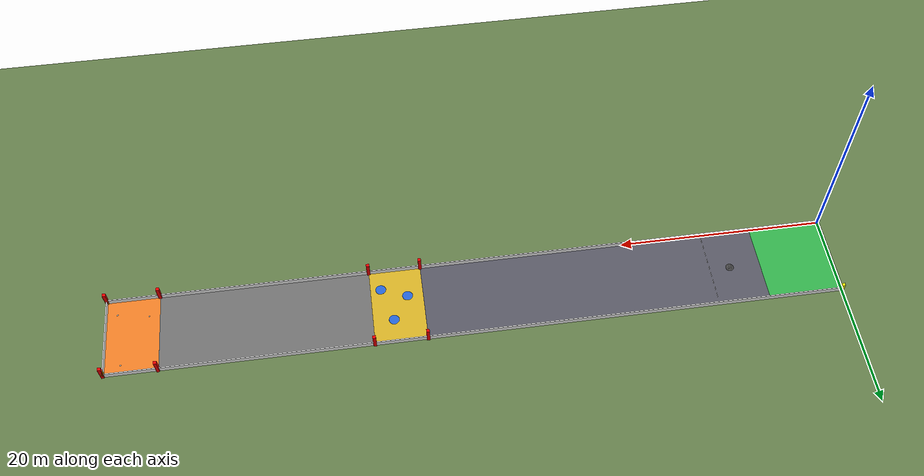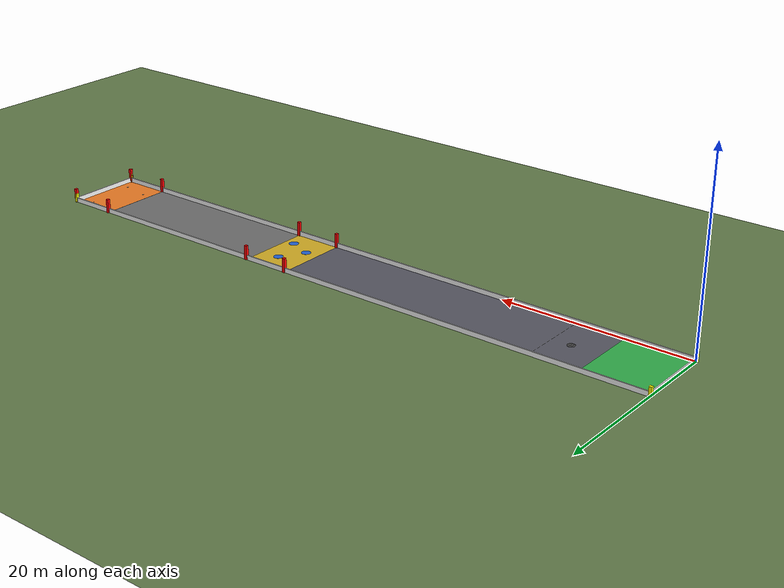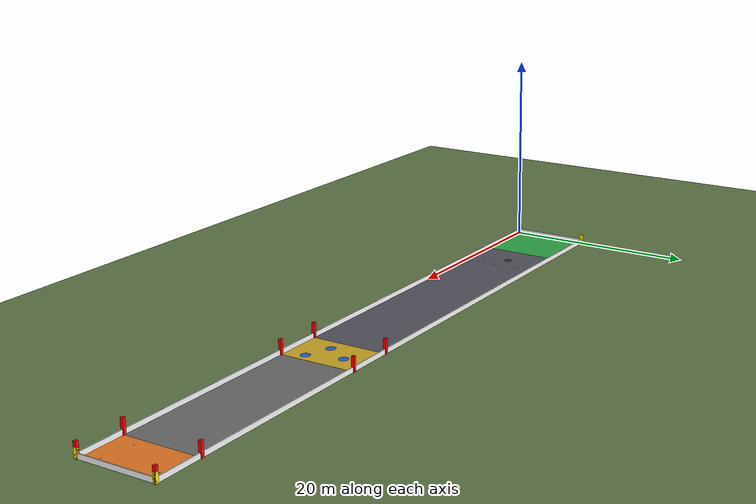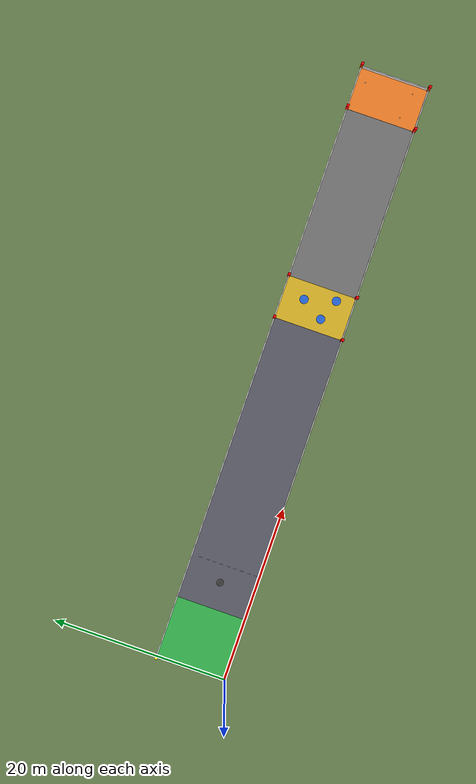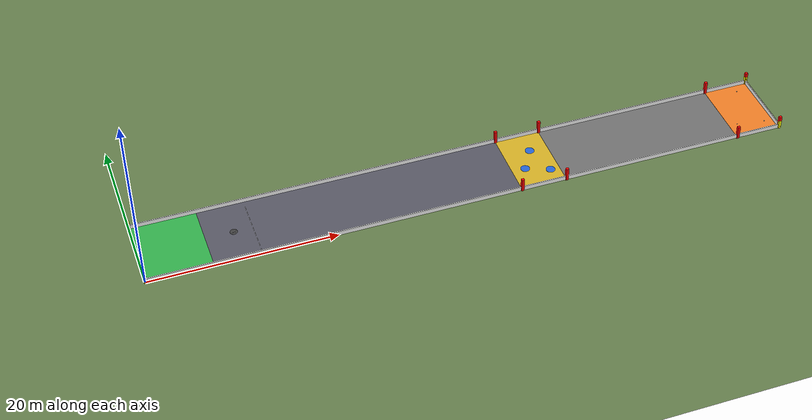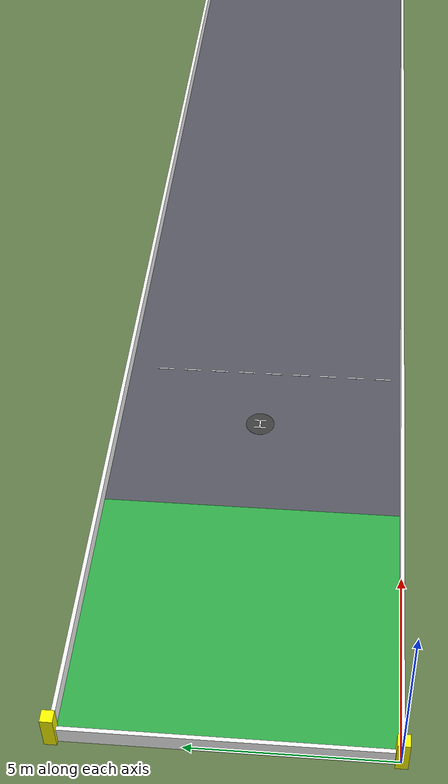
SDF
<sdf version="1.11">
 <world name="drone_field">
  <scene><ambient>0.6 0.6 0.6</ambient><background>0.4 0.6 0.9</background></scene>
  <light type="directional" name="sun">
   <pose>35 4 20 0 0 0</pose>
   <diffuse>0.9 0.9 0.8 1</diffuse>
   <specular>0.3 0.3 0.3 1</specular>
   <attenuation>
    <range>1000</range>
    <constant>0.9</constant>
    <linear>0.01</linear>
    <quadratic>0.001</quadratic>
   </attenuation>
   <direction>0 -0.2 -0.9</direction>
  </light>
  <physics name="1ms" type="ode">
   <max_step_size>0.004</max_step_size>
   <real_time_factor>1.0</real_time_factor>
   <real_time_update_rate>250</real_time_update_rate>
  </physics>
  <gravity>0 0 -9.8</gravity>
  <magnetic_field>6e-06 2.3e-05 -4.2e-05</magnetic_field>
  <atmosphere type="adiabatic"/>
  <spherical_coordinates>
   <surface_model>EARTH_WGS84</surface_model>
   <latitude_deg>47.39797</latitude_deg>
   <longitude_deg>8.54616</longitude_deg>
   <elevation>0</elevation>
  </spherical_coordinates>
  <model name="ground_plane">
   <static>true</static>
   <link name="link">
    <collision name="collision">
     <geometry><plane><normal>0 0 1</normal><size>200 200</size></plane></geometry>
     <surface><friction><ode><mu>1.0</mu><mu2>1.0</mu2></ode></friction></surface>
    </collision>
    <visual name="visual">
     <geometry><plane><normal>0 0 1</normal><size>200 200</size></plane></geometry>
     <material>
      <ambient>0.3 0.4 0.2 1</ambient>
      <diffuse>0.4 0.5 0.3 1</diffuse>
      <specular>0.1 0.1 0.1 1</specular>
     </material>
    </visual>
   </link>
  </model>
  <model name="field_base">
   <static>true</static>
   <pose>35 4 0.001 0 0 0</pose>
   <link name="base_link">
    <visual name="base_visual">
     <geometry><box><size>70 8 0.01</size></box></geometry>
     <material><ambient>0.35 0.35 0.35 1</ambient><diffuse>0.45 0.45 0.45 1</diffuse></material>
    </visual>
   </link>
  </model>
  <model name="field_border">
   <static>true</static>
   <link name="border_bottom">
    <pose>35 0 0.25 0 0 0</pose>
    <visual name="visual">
     <geometry><box><size>70.1 0.1 0.5</size></box></geometry>
     <material><ambient>1 1 1 1</ambient><diffuse>1 1 1 1</diffuse></material>
    </visual>
   </link>
   <link name="border_top">
    <pose>35 8 0.25 0 0 0</pose>
    <visual name="visual">
     <geometry><box><size>70.1 0.1 0.5</size></box></geometry>
     <material><ambient>1 1 1 1</ambient><diffuse>1 1 1 1</diffuse></material>
    </visual>
   </link>
   <link name="border_left">
    <pose>0 4 0.25 0 0 1.5708</pose>
    <visual name="visual">
     <geometry><box><size>8.1 0.1 0.5</size></box></geometry>
     <material><ambient>1 1 1 1</ambient><diffuse>1 1 1 1</diffuse></material>
    </visual>
   </link>
   <link name="border_right">
    <pose>70 4 0.25 0 0 1.5708</pose>
    <visual name="visual">
     <geometry><box><size>8.1 0.1 0.5</size></box></geometry>
     <material><ambient>1 1 1 1</ambient><diffuse>1 1 1 1</diffuse></material>
    </visual>
   </link>
  </model>
  <model name="zone_preparation">
   <static>true</static>
   <pose>3.5 4 0.006 0 0 0</pose>
   <link name="link">
    <visual name="visual">
     <geometry><box><size>7 8 0.01</size></box></geometry>
     <material><ambient>0.1 0.5 0.2 1</ambient><diffuse>0.2 0.7 0.3 1</diffuse></material>
    </visual>
   </link>
  </model>
  <model name="zone_takeoff_landing">
   <static>true</static>
   <pose>23.5 4 0.006 0 0 0</pose>
   <link name="link">
    <visual name="visual">
     <geometry><box><size>33 8 0.01</size></box></geometry>
     <material><ambient>0.25 0.25 0.3 1</ambient><diffuse>0.35 0.35 0.4 1</diffuse></material>
    </visual>
   </link>
  </model>
  <model name="landing_pad">
   <static>true</static>
   <pose>10 4 0.010 0 0 0</pose>
   <link name="pad_base">
    <visual name="pad_base_visual">
     <geometry><cylinder><radius>0.40</radius><length>0.008</length></cylinder></geometry>
     <material><ambient>0.2 0.2 0.2 1</ambient><diffuse>0.25 0.25 0.25 1</diffuse></material>
    </visual>
    <visual name="pad_ring_visual">
     <geometry><cylinder><radius>0.40</radius><length>0.004</length></cylinder></geometry>
     <material><ambient>0.9 0.9 0.9 1</ambient><diffuse>1 1 1 1</diffuse></material>
    </visual>
   </link>
  </model>
  <model name="h_marking">
   <static>true</static>
   <link name="h_left_bar">
    <pose>9.87 4 0.013 0 0 0</pose>
    <visual name="visual">
     <geometry><box><size>0.04 0.35 0.004</size></box></geometry>
     <material><ambient>1 1 1 1</ambient><diffuse>1 1 1 1</diffuse></material>
    </visual>
   </link>
   <link name="h_right_bar">
    <pose>10.13 4 0.013 0 0 0</pose>
    <visual name="visual">
     <geometry><box><size>0.04 0.35 0.004</size></box></geometry>
     <material><ambient>1 1 1 1</ambient><diffuse>1 1 1 1</diffuse></material>
    </visual>
   </link>
   <link name="h_cross_bar">
    <pose>10 4 0.013 0 0 0</pose>
    <visual name="visual">
     <geometry><box><size>0.30 0.04 0.004</size></box></geometry>
     <material><ambient>1 1 1 1</ambient><diffuse>1 1 1 1</diffuse></material>
    </visual>
   </link>
  </model>
  <model name="takeoff_line">
   <static>true</static>
   <link name="seg_01">
    <pose>12 0.55 0.012 0 0 0</pose>
    <visual name="visual">
     <geometry><box><size>0.04 0.5 0.005</size></box></geometry>
     <material><ambient>1 1 1 1</ambient><diffuse>1 1 1 1</diffuse></material>
    </visual>
   </link>
   <link name="seg_02">
    <pose>12 1.35 0.012 0 0 0</pose>
    <visual name="visual">
     <geometry><box><size>0.04 0.5 0.005</size></box></geometry>
     <material><ambient>1 1 1 1</ambient><diffuse>1 1 1 1</diffuse></material>
    </visual>
   </link>
   <link name="seg_03">
    <pose>12 2.15 0.012 0 0 0</pose>
    <visual name="visual">
     <geometry><box><size>0.04 0.5 0.005</size></box></geometry>
     <material><ambient>1 1 1 1</ambient><diffuse>1 1 1 1</diffuse></material>
    </visual>
   </link>
   <link name="seg_04">
    <pose>12 2.95 0.012 0 0 0</pose>
    <visual name="visual">
     <geometry><box><size>0.04 0.5 0.005</size></box></geometry>
     <material><ambient>1 1 1 1</ambient><diffuse>1 1 1 1</diffuse></material>
    </visual>
   </link>
   <link name="seg_05">
    <pose>12 3.75 0.012 0 0 0</pose>
    <visual name="visual">
     <geometry><box><size>0.04 0.5 0.005</size></box></geometry>
     <material><ambient>1 1 1 1</ambient><diffuse>1 1 1 1</diffuse></material>
    </visual>
   </link>
   <link name="seg_06">
    <pose>12 4.55 0.012 0 0 0</pose>
    <visual name="visual">
     <geometry><box><size>0.04 0.5 0.005</size></box></geometry>
     <material><ambient>1 1 1 1</ambient><diffuse>1 1 1 1</diffuse></material>
    </visual>
   </link>
   <link name="seg_07">
    <pose>12 5.35 0.012 0 0 0</pose>
    <visual name="visual">
     <geometry><box><size>0.04 0.5 0.005</size></box></geometry>
     <material><ambient>1 1 1 1</ambient><diffuse>1 1 1 1</diffuse></material>
    </visual>
   </link>
   <link name="seg_08">
    <pose>12 6.15 0.012 0 0 0</pose>
    <visual name="visual">
     <geometry><box><size>0.04 0.5 0.005</size></box></geometry>
     <material><ambient>1 1 1 1</ambient><diffuse>1 1 1 1</diffuse></material>
    </visual>
   </link>
   <link name="seg_09">
    <pose>12 6.95 0.012 0 0 0</pose>
    <visual name="visual">
     <geometry><box><size>0.04 0.5 0.005</size></box></geometry>
     <material><ambient>1 1 1 1</ambient><diffuse>1 1 1 1</diffuse></material>
    </visual>
   </link>
  </model>
  <model name="zone_drop">
   <static>true</static>
   <pose>42.5 4 0.006 0 0 0</pose>
   <link name="base_link">
    <visual name="base_visual">
     <geometry><box><size>5 8 0.01</size></box></geometry>
     <material><ambient>0.6 0.5 0.1 1</ambient><diffuse>0.85 0.7 0.15 1</diffuse></material>
    </visual>
   </link>
  </model>
  <model name="effective_zone_b">
   <static>true</static>
   <link name="b_zone_1">
    <pose>41.5 3.0 0.010 0 0 0</pose>
    <visual name="visual">
     <geometry><cylinder><radius>0.50</radius><length>0.005</length></cylinder></geometry>
     <material><ambient>0.1 0.3 0.7 1</ambient><diffuse>0.15 0.4 0.85 1</diffuse></material>
    </visual>
   </link>
   <link name="b_zone_2">
    <pose>43.0 5.5 0.010 0 0 0</pose>
    <visual name="visual">
     <geometry><cylinder><radius>0.50</radius><length>0.005</length></cylinder></geometry>
     <material><ambient>0.1 0.3 0.7 1</ambient><diffuse>0.15 0.4 0.85 1</diffuse></material>
    </visual>
   </link>
   <link name="b_zone_3">
    <pose>44.0 2.0 0.010 0 0 0</pose>
    <visual name="visual">
     <geometry><cylinder><radius>0.50</radius><length>0.005</length></cylinder></geometry>
     <material><ambient>0.1 0.3 0.7 1</ambient><diffuse>0.15 0.4 0.85 1</diffuse></material>
    </visual>
   </link>
  </model>
  <model name="zone_reconnaissance">
   <static>true</static>
   <pose>67.5 4 0.006 0 0 0</pose>
   <link name="link">
    <visual name="visual">
     <geometry><box><size>5 8 0.01</size></box></geometry>
     <material><ambient>0.7 0.35 0.1 1</ambient><diffuse>0.95 0.5 0.15 1</diffuse></material>
    </visual>
   </link>
  </model>
  <model name="hazard_plates">
   <static>true</static>
   <link name="hazard_plate_1">
    <pose>66.0 2.0 0.010 0 0 0</pose>
    <visual name="visual">
     <geometry><box><size>0.12 0.12 0.012</size></box></geometry>
     <material>
      <ambient>0.65 0.65 0.65 1</ambient>
      <diffuse>0.8 0.8 0.8 1</diffuse>
      <emissive>0 0 0 1</emissive>
      <pbr>
       <metal>
        <albedo_map>file:///home/ryder/Task_flight_ws/drone_field_meshes/textures/hazard_flammable.png</albedo_map>
        <metalness>0</metalness>
        <roughness>1</roughness>
       </metal>
      </pbr>
     </material>
    </visual>
   </link>
   <link name="hazard_plate_2">
    <pose>68.5 7.0 0.010 0 0 0</pose>
    <visual name="visual">
     <geometry><box><size>0.12 0.12 0.012</size></box></geometry>
     <material>
      <ambient>0.65 0.65 0.65 1</ambient>
      <diffuse>0.8 0.8 0.8 1</diffuse>
      <emissive>0 0 0 1</emissive>
      <pbr>
       <metal>
        <albedo_map>file:///home/ryder/Task_flight_ws/drone_field_meshes/textures/hazard_health.png</albedo_map>
        <metalness>0</metalness>
        <roughness>1</roughness>
       </metal>
      </pbr>
     </material>
    </visual>
   </link>
   <link name="hazard_plate_3">
    <pose>69.0 1.5 0.010 0 0 0</pose>
    <visual name="visual">
     <geometry><box><size>0.12 0.12 0.012</size></box></geometry>
     <material>
      <ambient>0.65 0.65 0.65 1</ambient>
      <diffuse>0.8 0.8 0.8 1</diffuse>
      <emissive>0 0 0 1</emissive>
      <pbr>
       <metal>
        <albedo_map>file:///home/ryder/Task_flight_ws/drone_field_meshes/textures/hazard_danger.png</albedo_map>
        <metalness>0</metalness>
        <roughness>1</roughness>
       </metal>
      </pbr>
     </material>
    </visual>
   </link>
  </model>
  <model name="corner_markers">
   <static>true</static>
   <link name="corner_00">
    <pose>0 0 0.5 0 0 0</pose>
    <visual name="visual">
     <geometry><box><size>0.3 0.3 1.0</size></box></geometry>
     <material><ambient>1 1 0 1</ambient><diffuse>1 1 0 1</diffuse></material>
    </visual>
   </link>
   <link name="corner_08">
    <pose>0 8 0.5 0 0 0</pose>
    <visual name="visual">
     <geometry><box><size>0.3 0.3 1.0</size></box></geometry>
     <material><ambient>1 1 0 1</ambient><diffuse>1 1 0 1</diffuse></material>
    </visual>
   </link>
   <link name="corner_70_0">
    <pose>70 0 0.5 0 0 0</pose>
    <visual name="visual">
     <geometry><box><size>0.3 0.3 1.0</size></box></geometry>
     <material><ambient>1 1 0 1</ambient><diffuse>1 1 0 1</diffuse></material>
    </visual>
   </link>
   <link name="corner_70_8">
    <pose>70 8 0.5 0 0 0</pose>
    <visual name="visual">
     <geometry><box><size>0.3 0.3 1.0</size></box></geometry>
     <material><ambient>1 1 0 1</ambient><diffuse>1 1 0 1</diffuse></material>
    </visual>
   </link>
  </model>
  <model name="mission_corner_markers">
   <static>true</static>
   <link name="drop_corner_40_0">
    <pose>40 0 0.75 0 0 0</pose>
    <visual name="visual">
     <geometry><box><size>0.3 0.3 1.5</size></box></geometry>
     <material><ambient>1 0 0 1</ambient><diffuse>1 0 0 1</diffuse><emissive>0.3 0 0 1</emissive></material>
    </visual>
   </link>
   <link name="drop_corner_40_8">
    <pose>40 8 0.75 0 0 0</pose>
    <visual name="visual">
     <geometry><box><size>0.3 0.3 1.5</size></box></geometry>
     <material><ambient>1 0 0 1</ambient><diffuse>1 0 0 1</diffuse><emissive>0.3 0 0 1</emissive></material>
    </visual>
   </link>
   <link name="drop_corner_45_0">
    <pose>45 0 0.75 0 0 0</pose>
    <visual name="visual">
     <geometry><box><size>0.3 0.3 1.5</size></box></geometry>
     <material><ambient>1 0 0 1</ambient><diffuse>1 0 0 1</diffuse><emissive>0.3 0 0 1</emissive></material>
    </visual>
   </link>
   <link name="drop_corner_45_8">
    <pose>45 8 0.75 0 0 0</pose>
    <visual name="visual">
     <geometry><box><size>0.3 0.3 1.5</size></box></geometry>
     <material><ambient>1 0 0 1</ambient><diffuse>1 0 0 1</diffuse><emissive>0.3 0 0 1</emissive></material>
    </visual>
   </link>
   <link name="recon_corner_65_0">
    <pose>65 0 0.75 0 0 0</pose>
    <visual name="visual">
     <geometry><box><size>0.3 0.3 1.5</size></box></geometry>
     <material><ambient>1 0 0 1</ambient><diffuse>1 0 0 1</diffuse><emissive>0.3 0 0 1</emissive></material>
    </visual>
   </link>
   <link name="recon_corner_65_8">
    <pose>65 8 0.75 0 0 0</pose>
    <visual name="visual">
     <geometry><box><size>0.3 0.3 1.5</size></box></geometry>
     <material><ambient>1 0 0 1</ambient><diffuse>1 0 0 1</diffuse><emissive>0.3 0 0 1</emissive></material>
    </visual>
   </link>
   <link name="recon_corner_70_0">
    <pose>70 0 0.75 0 0 0</pose>
    <visual name="visual">
     <geometry><box><size>0.3 0.3 1.5</size></box></geometry>
     <material><ambient>1 0 0 1</ambient><diffuse>1 0 0 1</diffuse><emissive>0.3 0 0 1</emissive></material>
    </visual>
   </link>
   <link name="recon_corner_70_8">
    <pose>70 8 0.75 0 0 0</pose>
    <visual name="visual">
     <geometry><box><size>0.3 0.3 1.5</size></box></geometry>
     <material><ambient>1 0 0 1</ambient><diffuse>1 0 0 1</diffuse><emissive>0.3 0 0 1</emissive></material>
    </visual>
   </link>
  </model>
 </world>
</sdf>
